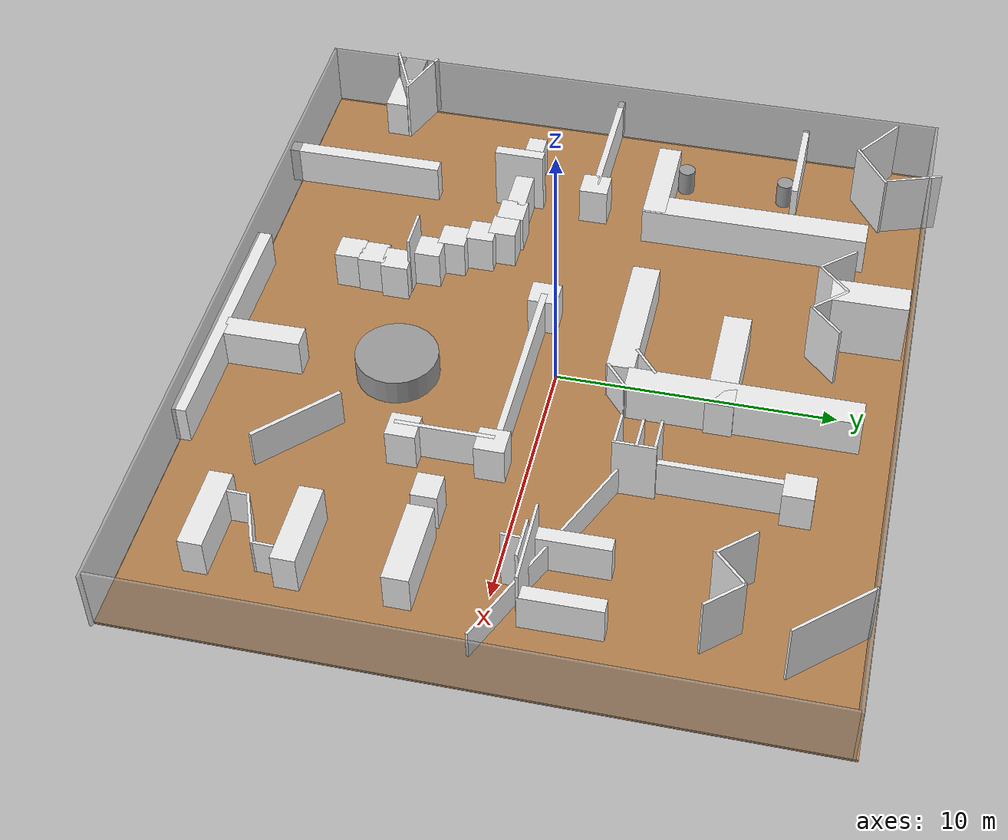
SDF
<sdf version="1.7">
 <world name="default">
  <light name="sun" type="directional">
   <pose>0 0 10 0 -0 0</pose>
   <diffuse>0.8 0.8 0.8 1</diffuse>
   <specular>0.2 0.2 0.2 1</specular>
   <attenuation>
    <range>1000</range>
    <constant>0.9</constant>
    <linear>0.01</linear>
    <quadratic>0.001</quadratic>
   </attenuation>
   <direction>-0.5 0.1 -0.9</direction>
   <spot><inner_angle>0</inner_angle><outer_angle>0</outer_angle><falloff>0</falloff></spot>
  </light>
  <physics name="default_physics" default="0" type="ode">
   <real_time_update_rate>1000</real_time_update_rate>
   <max_step_size>0.001</max_step_size>
   <real_time_factor>1</real_time_factor>
   <ode>
    <solver>
     <type>quick</type>
     <iters>150</iters>
     <precon_iters>0</precon_iters>
     <sor>1.4</sor>
     <use_dynamic_moi_rescaling>1</use_dynamic_moi_rescaling>
    </solver>
    <constraints>
     <cfm>1e-05</cfm>
     <erp>0.2</erp>
     <contact_max_correcting_vel>2000</contact_max_correcting_vel>
     <contact_surface_layer>0.01</contact_surface_layer>
    </constraints>
   </ode>
  </physics>
  <model name="box_1">
   <pose>0.05 -12.05 1.25 0 -0 0</pose>
   <static>1</static>
   <link name="link">
    <collision name="collision"><geometry><box><size>27.4835 0.1 2.5</size></box></geometry></collision>
    <visual name="visual">
     <geometry><box><size>27.4835 0.1 2.5</size></box></geometry>
     <material>
      <script><name>Gazebo/GreyTransparent</name><uri>file://media/materials/scripts/gazebo.material</uri></script>
     </material>
    </visual>
   </link>
  </model>
  <model name="box_2">
   <pose>13.6164 0.05 1.25 0 -0 0</pose>
   <static>1</static>
   <link name="link">
    <collision name="collision"><geometry><box><size>0.1 24.1 2.5</size></box></geometry></collision>
    <visual name="visual">
     <geometry><box><size>0.1 24.1 2.5</size></box></geometry>
     <material>
      <script><name>Gazebo/GreyTransparent</name><uri>file://media/materials/scripts/gazebo.material</uri></script>
     </material>
    </visual>
   </link>
  </model>
  <model name="box_3">
   <pose>-0.05 12.05 1.25 0 -0 0</pose>
   <static>1</static>
   <link name="link">
    <collision name="collision"><geometry><box><size>27.4577 0.1 2.5</size></box></geometry></collision>
    <visual name="visual">
     <geometry><box><size>27.4577 0.1 2.5</size></box></geometry>
     <material>
      <script><name>Gazebo/GreyTransparent</name><uri>file://media/materials/scripts/gazebo.material</uri></script>
     </material>
    </visual>
   </link>
  </model>
  <model name="box_4">
   <pose>-13.7117 -0.05 1.25 0 -0 0</pose>
   <static>1</static>
   <link name="link">
    <collision name="collision"><geometry><box><size>0.1 24.1 2.5</size></box></geometry></collision>
    <visual name="visual">
     <geometry><box><size>0.1 24.1 2.5</size></box></geometry>
     <material>
      <script><name>Gazebo/GreyTransparent</name><uri>file://media/materials/scripts/gazebo.material</uri></script>
     </material>
    </visual>
   </link>
  </model>
  <model name="box_5">
   <pose>-0.057129 0.081047 -0.05 0 -0 0</pose>
   <static>1</static>
   <link name="link">
    <collision name="collision"><geometry><box><size>27.3464 24.2 0.1</size></box></geometry></collision>
    <visual name="visual">
     <geometry><box><size>27.3464 24.2 0.1</size></box></geometry>
     <material>
      <script><name>Gazebo/WoodFloor</name><uri>file://media/materials/scripts/gazebo.material</uri></script>
     </material>
    </visual>
   </link>
  </model>
  <gravity>0 0 -9.8066</gravity>
  <magnetic_field>6e-06 2.3e-05 -4.2e-05</magnetic_field>
  <atmosphere type="adiabatic"/>
  <scene><ambient>0.4 0.4 0.4 1</ambient><background>0.7 0.7 0.7 1</background><shadows>1</shadows></scene>
  <spherical_coordinates>
   <surface_model>EARTH_WGS84</surface_model>
   <latitude_deg>0</latitude_deg>
   <longitude_deg>0</longitude_deg>
   <elevation>0</elevation>
   <heading_deg>0</heading_deg>
  </spherical_coordinates>
  <model name="box_9_clone_clone_0">
   <pose>-3.46298 -8.44795 0.75 0 -0 0</pose>
   <static>1</static>
   <link name="link">
    <collision name="collision"><geometry><box><size>1 1 1.5</size></box></geometry></collision>
    <visual name="visual">
     <geometry><box><size>1 1 1.5</size></box></geometry>
     <material>
      <script><name>Gazebo/White</name><uri>file://media/materials/scripts/gazebo.material</uri></script>
     </material>
    </visual>
   </link>
  </model>
  <model name="box_9_clone_clone_1">
   <pose>-3.40186 -7.56359 0.75 0 -0 0</pose>
   <static>1</static>
   <link name="link">
    <collision name="collision"><geometry><box><size>1 1 1.5</size></box></geometry></collision>
    <visual name="visual">
     <geometry><box><size>1 1 1.5</size></box></geometry>
     <material>
      <script><name>Gazebo/White</name><uri>file://media/materials/scripts/gazebo.material</uri></script>
     </material>
    </visual>
   </link>
  </model>
  <model name="box_9_clone_clone_2">
   <pose>-3.23885 -6.64819 0.75 0 -0 0</pose>
   <static>1</static>
   <link name="link">
    <collision name="collision"><geometry><box><size>1 1 1.5</size></box></geometry></collision>
    <visual name="visual">
     <geometry><box><size>1 1 1.5</size></box></geometry>
     <material>
      <script><name>Gazebo/White</name><uri>file://media/materials/scripts/gazebo.material</uri></script>
     </material>
    </visual>
   </link>
  </model>
  <model name="box_9_clone_clone_9_clone_3">
   <pose>0.923625 6.78613 0.75 0 -0 0</pose>
   <static>1</static>
   <link name="link">
    <collision name="collision"><geometry><box><size>1 8.21069 1.5</size></box></geometry></collision>
    <visual name="visual">
     <geometry><box><size>1 8.21069 1.5</size></box></geometry>
     <material>
      <script><name>Gazebo/White</name><uri>file://media/materials/scripts/gazebo.material</uri></script>
     </material>
    </visual>
   </link>
  </model>
  <model name="box_8_clone_clone_4_clone_1">
   <pose>0.92481 2.34897 0.68407 0 -0 0.698352</pose>
   <static>1</static>
   <link name="link">
    <collision name="collision"><geometry><box><size>1.32603 0.1 1.67648</size></box></geometry></collision>
    <visual name="visual">
     <geometry><box><size>1.32603 0.1 1.67648</size></box></geometry>
     <material>
      <script><name>Gazebo/White</name><uri>file://media/materials/scripts/gazebo.material</uri></script>
     </material>
    </visual>
   </link>
  </model>
  <model name="box_9_clone_clone_7_clone">
   <pose>-2.08707 2.37686 0.75 0 -0 0</pose>
   <static>1</static>
   <link name="link">
    <collision name="collision"><geometry><box><size>5.14646 1 1.5</size></box></geometry></collision>
    <visual name="visual">
     <geometry><box><size>5.14646 1 1.5</size></box></geometry>
     <material>
      <script><name>Gazebo/White</name><uri>file://media/materials/scripts/gazebo.material</uri></script>
     </material>
    </visual>
   </link>
  </model>
  <model name="box_9_clone_clone_7_clone_clone_1">
   <pose>-9.08212 -3.08785 0.75 0 -0 0</pose>
   <static>1</static>
   <link name="link">
    <collision name="collision"><geometry><box><size>3.96159 0.707777 1.5</size></box></geometry></collision>
    <visual name="visual">
     <geometry><box><size>3.96159 0.707777 1.5</size></box></geometry>
     <material>
      <script><name>Gazebo/White</name><uri>file://media/materials/scripts/gazebo.material</uri></script>
     </material>
    </visual>
   </link>
  </model>
  <model name="box_9_clone_clone_7_clone_clone_2">
   <pose>-5.82661 -3.21952 0.75 0 -0 0</pose>
   <static>1</static>
   <link name="link">
    <collision name="collision"><geometry><box><size>1 1 1.5</size></box></geometry></collision>
    <visual name="visual">
     <geometry><box><size>1 1 1.5</size></box></geometry>
     <material>
      <script><name>Gazebo/White</name><uri>file://media/materials/scripts/gazebo.material</uri></script>
     </material>
    </visual>
   </link>
  </model>
  <model name="box_9_clone_clone_7_clone_clone_3">
   <pose>-5.3619 -3.95424 0.75 0 -0 0</pose>
   <static>1</static>
   <link name="link">
    <collision name="collision"><geometry><box><size>1 1 1.5</size></box></geometry></collision>
    <visual name="visual">
     <geometry><box><size>1 1 1.5</size></box></geometry>
     <material>
      <script><name>Gazebo/White</name><uri>file://media/materials/scripts/gazebo.material</uri></script>
     </material>
    </visual>
   </link>
  </model>
  <model name="box_9_clone_clone_7_clone_clone_4">
   <pose>-4.89443 -4.91365 0.75 0 -0 0</pose>
   <static>1</static>
   <link name="link">
    <collision name="collision"><geometry><box><size>1 1 1.5</size></box></geometry></collision>
    <visual name="visual">
     <geometry><box><size>1 1 1.5</size></box></geometry>
     <material>
      <script><name>Gazebo/White</name><uri>file://media/materials/scripts/gazebo.material</uri></script>
     </material>
    </visual>
   </link>
  </model>
  <model name="box_9_clone_clone_7_clone_clone_5">
   <pose>-4.14032 -5.67151 0.75 0 -0 0</pose>
   <static>1</static>
   <link name="link">
    <collision name="collision"><geometry><box><size>1 1 1.5</size></box></geometry></collision>
    <visual name="visual">
     <geometry><box><size>1 1 1.5</size></box></geometry>
     <material>
      <script><name>Gazebo/White</name><uri>file://media/materials/scripts/gazebo.material</uri></script>
     </material>
    </visual>
   </link>
  </model>
  <model name="box_8_clone_clone_4_clone_2_clone">
   <pose>-3.89284 -6.16269 1.25 0 -0 0</pose>
   <static>1</static>
   <link name="link">
    <collision name="collision"><geometry><box><size>1.5 0.1 2.5</size></box></geometry></collision>
    <visual name="visual">
     <geometry><box><size>1.5 0.1 2.5</size></box></geometry>
     <material>
      <script><name>Gazebo/White</name><uri>file://media/materials/scripts/gazebo.material</uri></script>
     </material>
    </visual>
   </link>
  </model>
  <model name="box_6_clone_clone_4_clone">
   <pose>4.19641 4.36405 1.25 0 -0 1.5473</pose>
   <static>1</static>
   <link name="link">
    <collision name="collision"><geometry><box><size>0.1 1.24868 2.5</size></box></geometry></collision>
    <visual name="visual">
     <geometry><box><size>0.1 1.24868 2.5</size></box></geometry>
     <material>
      <script><name>Gazebo/White</name><uri>file://media/materials/scripts/gazebo.material</uri></script>
     </material>
    </visual>
   </link>
  </model>
  <model name="box_9_clone_clone_9_clone_3_clone_0">
   <pose>-0.627026 6.01445 0.75 0 -0 0</pose>
   <static>1</static>
   <link name="link">
    <collision name="collision"><geometry><box><size>4.34985 1 1.5</size></box></geometry></collision>
    <visual name="visual">
     <geometry><box><size>4.34985 1 1.5</size></box></geometry>
     <material>
      <script><name>Gazebo/White</name><uri>file://media/materials/scripts/gazebo.material</uri></script>
     </material>
    </visual>
   </link>
  </model>
  <audio><device>default</device></audio>
  <model name="box_9_clone_clone_5_clone_2_clone_0_clone_2">
   <pose>4.51157 6.4869 0.75 0 -0 0</pose>
   <static>1</static>
   <link name="link">
    <collision name="collision"><geometry><box><size>0.217022 4.27843 1.5</size></box></geometry></collision>
    <visual name="visual">
     <geometry><box><size>0.217022 4.27843 1.5</size></box></geometry>
     <material>
      <script><name>Gazebo/White</name><uri>file://media/materials/scripts/gazebo.material</uri></script>
     </material>
    </visual>
   </link>
  </model>
  <model name="box_6_clone_clone_4_clone_clone">
   <pose>4.24691 3.74326 1.25 0 -0 1.5473</pose>
   <static>1</static>
   <link name="link">
    <collision name="collision"><geometry><box><size>0.1 1.20271 2.5</size></box></geometry></collision>
    <visual name="visual">
     <geometry><box><size>0.1 1.20271 2.5</size></box></geometry>
     <material>
      <script><name>Gazebo/White</name><uri>file://media/materials/scripts/gazebo.material</uri></script>
     </material>
    </visual>
   </link>
  </model>
  <model name="box_6_clone_clone_4_clone_clone_0">
   <pose>4.18218 3.00755 1.25 0 -0 1.5473</pose>
   <static>1</static>
   <link name="link">
    <collision name="collision"><geometry><box><size>0.1 1.22541 2.5</size></box></geometry></collision>
    <visual name="visual">
     <geometry><box><size>0.1 1.22541 2.5</size></box></geometry>
     <material>
      <script><name>Gazebo/White</name><uri>file://media/materials/scripts/gazebo.material</uri></script>
     </material>
    </visual>
   </link>
  </model>
  <model name="box_8_clone_clone_4_clone_1_clone">
   <pose>0.020285 3.21878 0.598648 0 -0 0.698352</pose>
   <static>1</static>
   <link name="link">
    <collision name="collision"><geometry><box><size>1.32602 0.1 1.81655</size></box></geometry></collision>
    <visual name="visual">
     <geometry><box><size>1.32602 0.1 1.81655</size></box></geometry>
     <material>
      <script><name>Gazebo/White</name><uri>file://media/materials/scripts/gazebo.material</uri></script>
     </material>
    </visual>
   </link>
  </model>
  <model name="box_9_clone_clone_5_clone_2_clone_0_clone_2_clone">
   <pose>-8.20929 5.84781 0.75 0 -0 0</pose>
   <static>1</static>
   <link name="link">
    <collision name="collision"><geometry><box><size>0.999715 8.40331 1.5</size></box></geometry></collision>
    <visual name="visual">
     <geometry><box><size>0.999715 8.40331 1.5</size></box></geometry>
     <material>
      <script><name>Gazebo/White</name><uri>file://media/materials/scripts/gazebo.material</uri></script>
     </material>
    </visual>
   </link>
  </model>
  <model name="box_9_clone_clone_5_clone_2_clone_0_clone_2_clone_0_clone">
   <pose>1.29918 -0.998345 0.75 0 -0 1.56359</pose>
   <static>1</static>
   <link name="link">
    <collision name="collision"><geometry><box><size>0.238975 7.6866 1.5</size></box></geometry></collision>
    <visual name="visual">
     <geometry><box><size>0.238975 7.6866 1.5</size></box></geometry>
     <material>
      <script><name>Gazebo/White</name><uri>file://media/materials/scripts/gazebo.material</uri></script>
     </material>
    </visual>
   </link>
  </model>
  <model name="box_9_clone_clone_7_clone_clone">
   <pose>-11.9133 7.09734 0.75 0 -0 0</pose>
   <static>1</static>
   <link name="link">
    <collision name="collision"><geometry><box><size>3.69623 0.244601 1.5</size></box></geometry></collision>
    <visual name="visual">
     <geometry><box><size>3.69623 0.244601 1.5</size></box></geometry>
     <material>
      <script><name>Gazebo/White</name><uri>file://media/materials/scripts/gazebo.material</uri></script>
     </material>
    </visual>
   </link>
  </model>
  <model name="box_6_clone_clone_clone_0_clone_0">
   <pose>-5.51729 9.19762 1.25 0 0 -2.41059</pose>
   <static>1</static>
   <link name="link">
    <collision name="collision"><geometry><box><size>0.1 1.60265 2.5</size></box></geometry></collision>
    <visual name="visual">
     <geometry><box><size>0.1 1.60265 2.5</size></box></geometry>
     <material>
      <script><name>Gazebo/White</name><uri>file://media/materials/scripts/gazebo.material</uri></script>
     </material>
    </visual>
   </link>
  </model>
  <model name="box_6_clone_clone_clone_0_clone_0_clone">
   <pose>-4.45373 9.15321 1.25 0 -0 2.3647</pose>
   <static>1</static>
   <link name="link">
    <collision name="collision"><geometry><box><size>0.1 1.60265 2.5</size></box></geometry></collision>
    <visual name="visual">
     <geometry><box><size>0.1 1.60265 2.5</size></box></geometry>
     <material>
      <script><name>Gazebo/White</name><uri>file://media/materials/scripts/gazebo.material</uri></script>
     </material>
    </visual>
   </link>
  </model>
  <model name="box_6_clone_clone_clone_0_clone_0_clone_0">
   <pose>-3.36619 9.12539 1.25 0 0 -2.41059</pose>
   <static>1</static>
   <link name="link">
    <collision name="collision"><geometry><box><size>0.1 1.60265 2.5</size></box></geometry></collision>
    <visual name="visual">
     <geometry><box><size>0.1 1.60265 2.5</size></box></geometry>
     <material>
      <script><name>Gazebo/White</name><uri>file://media/materials/scripts/gazebo.material</uri></script>
     </material>
    </visual>
   </link>
  </model>
  <model name="box_6_clone_clone_clone_0_clone_0_clone_clone">
   <pose>-2.34285 9.09006 1.25 0 -0 2.3647</pose>
   <static>1</static>
   <link name="link">
    <collision name="collision"><geometry><box><size>0.1 1.60265 2.5</size></box></geometry></collision>
    <visual name="visual">
     <geometry><box><size>0.1 1.60265 2.5</size></box></geometry>
     <material>
      <script><name>Gazebo/White</name><uri>file://media/materials/scripts/gazebo.material</uri></script>
     </material>
    </visual>
   </link>
  </model>
  <model name="box_6_clone_clone_clone_0_clone_0_clone_1">
   <pose>-3.90632 10.5012 1.25 0 0 -3.13387</pose>
   <static>1</static>
   <link name="link">
    <collision name="collision"><geometry><box><size>1.07348 2.77689 2.5</size></box></geometry></collision>
    <visual name="visual">
     <geometry><box><size>1.07348 2.77689 2.5</size></box></geometry>
     <material>
      <script><name>Gazebo/White</name><uri>file://media/materials/scripts/gazebo.material</uri></script>
     </material>
    </visual>
   </link>
  </model>
  <model name="unit_cylinder">
   <pose>0.985445 -5.52503 0.500015 -7e-06 7e-06 -0.000742</pose>
   <link name="link">
    <inertial>
     <mass>1</mass>
     <inertia><ixx>0.145833</ixx><ixy>0</ixy><ixz>0</ixz><iyy>0.145833</iyy><iyz>0</iyz><izz>0.125</izz></inertia>
    </inertial>
    <collision name="collision">
     <geometry><cylinder><radius>1.49142</radius><length>1</length></cylinder></geometry>
    </collision>
    <visual name="visual">
     <geometry><cylinder><radius>1.49142</radius><length>1</length></cylinder></geometry>
     <material>
      <script><name>Gazebo/Grey</name><uri>file://media/materials/scripts/gazebo.material</uri></script>
     </material>
    </visual>
   </link>
  </model>
  <model name="box_6_clone_clone_4_clone_clone_1">
   <pose>4.8146 3.66742 1.25 0 0 -0.001309</pose>
   <static>1</static>
   <link name="link">
    <collision name="collision"><geometry><box><size>0.1 1.5 2.5</size></box></geometry></collision>
    <visual name="visual">
     <geometry><box><size>0.1 1.5 2.5</size></box></geometry>
     <material>
      <script><name>Gazebo/White</name><uri>file://media/materials/scripts/gazebo.material</uri></script>
     </material>
    </visual>
   </link>
  </model>
  <model name="box_9_clone_clone_5_clone_2_clone_0_clone_2_clone_0_clone_clone_clone">
   <pose>9.54444 -6.45224 0.75 0 -0 1.56352</pose>
   <static>1</static>
   <link name="link">
    <collision name="collision"><geometry><box><size>0.843798 3.07714 1.5</size></box></geometry></collision>
    <visual name="visual">
     <geometry><box><size>0.843798 3.07714 1.5</size></box></geometry>
     <material>
      <script><name>Gazebo/White</name><uri>file://media/materials/scripts/gazebo.material</uri></script>
     </material>
    </visual>
   </link>
  </model>
  <model name="box_9_clone_clone_5_clone_2_clone_0_clone_2_clone_0_clone_clone_clone_clone">
   <pose>9.54266 -2.76485 0.75 0 -0 1.56352</pose>
   <static>1</static>
   <link name="link">
    <collision name="collision"><geometry><box><size>0.91874 3.07802 1.5</size></box></geometry></collision>
    <visual name="visual">
     <geometry><box><size>0.91874 3.07802 1.5</size></box></geometry>
     <material>
      <script><name>Gazebo/White</name><uri>file://media/materials/scripts/gazebo.material</uri></script>
     </material>
    </visual>
   </link>
  </model>
  <model name="box_6_clone_clone_1_clone">
   <pose>9.63242 -8.01755 0.74041 0 0 -1.19602</pose>
   <static>1</static>
   <link name="link">
    <collision name="collision"><geometry><box><size>0.1 2.10156 1.49114</size></box></geometry></collision>
    <visual name="visual">
     <geometry><box><size>0.1 2.10156 1.49114</size></box></geometry>
     <material>
      <script><name>Gazebo/White</name><uri>file://media/materials/scripts/gazebo.material</uri></script>
     </material>
    </visual>
   </link>
  </model>
  <model name="box_6_clone_clone_4_clone_clone_clone">
   <pose>9.37461 0.934459 1.25 0 -0 1.56028</pose>
   <static>1</static>
   <link name="link">
    <collision name="collision"><geometry><box><size>0.1 1.5 2.5</size></box></geometry></collision>
    <visual name="visual">
     <geometry><box><size>0.1 1.5 2.5</size></box></geometry>
     <material>
      <script><name>Gazebo/White</name><uri>file://media/materials/scripts/gazebo.material</uri></script>
     </material>
    </visual>
   </link>
  </model>
  <model name="box_6_clone_clone_4_clone_clone_clone_0">
   <pose>9.4532 1.11788 1.25 0 -0 1.57422</pose>
   <static>1</static>
   <link name="link">
    <collision name="collision"><geometry><box><size>0.1 3.02222 2.5</size></box></geometry></collision>
    <visual name="visual">
     <geometry><box><size>0.1 3.02222 2.5</size></box></geometry>
     <material>
      <script><name>Gazebo/White</name><uri>file://media/materials/scripts/gazebo.material</uri></script>
     </material>
    </visual>
   </link>
  </model>
  <model name="box_6_clone_clone_4_clone_clone_clone_clone">
   <pose>9.36555 0.57412 1.25 0 -0 3.12409</pose>
   <static>1</static>
   <link name="link">
    <collision name="collision"><geometry><box><size>0.1 0.695313 2.5</size></box></geometry></collision>
    <visual name="visual">
     <geometry><box><size>0.1 0.695313 2.5</size></box></geometry>
     <material>
      <script><name>Gazebo/White</name><uri>file://media/materials/scripts/gazebo.material</uri></script>
     </material>
    </visual>
   </link>
  </model>
  <model name="box_9_clone_clone_5_clone_2_clone_0_clone_2_clone_0_clone_clone_clone_clone_1">
   <pose>8.29292 2.40961 0.75 0 0 -3.13353</pose>
   <static>1</static>
   <link name="link">
    <collision name="collision"><geometry><box><size>0.517731 2.54125 1.5</size></box></geometry></collision>
    <visual name="visual">
     <geometry><box><size>0.517731 2.54125 1.5</size></box></geometry>
     <material>
      <script><name>Gazebo/White</name><uri>file://media/materials/scripts/gazebo.material</uri></script>
     </material>
    </visual>
   </link>
  </model>
  <model name="box_9_clone_clone_5_clone_2_clone_0_clone_2_clone_0_clone_clone_clone_clone_1_clone">
   <pose>10.7143 2.50136 0.75 0 0 -3.13353</pose>
   <static>1</static>
   <link name="link">
    <collision name="collision"><geometry><box><size>0.517731 2.83434 1.5</size></box></geometry></collision>
    <visual name="visual">
     <geometry><box><size>0.517731 2.83434 1.5</size></box></geometry>
     <material>
      <script><name>Gazebo/White</name><uri>file://media/materials/scripts/gazebo.material</uri></script>
     </material>
    </visual>
   </link>
  </model>
  <model name="box_6_clone_clone_clone_0_clone_0_clone_clone_clone">
   <pose>9.16663 7.48045 1.25 0 -0 2.3647</pose>
   <static>1</static>
   <link name="link">
    <collision name="collision"><geometry><box><size>0.1 1.60265 2.5</size></box></geometry></collision>
    <visual name="visual">
     <geometry><box><size>0.1 1.60265 2.5</size></box></geometry>
     <material>
      <script><name>Gazebo/White</name><uri>file://media/materials/scripts/gazebo.material</uri></script>
     </material>
    </visual>
   </link>
  </model>
  <model name="box_6_clone_clone_clone_0_clone_0_clone_2">
   <pose>8.12867 7.55946 1.25 0 0 -2.41059</pose>
   <static>1</static>
   <link name="link">
    <collision name="collision"><geometry><box><size>0.1 1.60265 2.5</size></box></geometry></collision>
    <visual name="visual">
     <geometry><box><size>0.1 1.60265 2.5</size></box></geometry>
     <material>
      <script><name>Gazebo/White</name><uri>file://media/materials/scripts/gazebo.material</uri></script>
     </material>
    </visual>
   </link>
  </model>
  <model name="box_6_clone_clone_clone_0_clone_0_clone_0_clone">
   <pose>10.2349 7.47203 1.25 0 0 -2.41059</pose>
   <static>1</static>
   <link name="link">
    <collision name="collision"><geometry><box><size>0.1 1.60265 2.5</size></box></geometry></collision>
    <visual name="visual">
     <geometry><box><size>0.1 1.60265 2.5</size></box></geometry>
     <material>
      <script><name>Gazebo/White</name><uri>file://media/materials/scripts/gazebo.material</uri></script>
     </material>
    </visual>
   </link>
  </model>
  <model name="box_6_clone_clone_1_clone_0">
   <pose>8.61855 1.50825 0.618044 0 -0 1.16323</pose>
   <static>1</static>
   <link name="link">
    <collision name="collision"><geometry><box><size>0.1 8.30654 1.15985</size></box></geometry></collision>
    <visual name="visual">
     <geometry><box><size>0.1 8.30654 1.15985</size></box></geometry>
     <material>
      <script><name>Gazebo/White</name><uri>file://media/materials/scripts/gazebo.material</uri></script>
     </material>
    </visual>
   </link>
  </model>
  <model name="box_9_clone_clone_7_clone_clone_clone_0">
   <pose>-9.65191 2.07884 0.75 0 -0 0</pose>
   <static>1</static>
   <link name="link">
    <collision name="collision"><geometry><box><size>3.72975 0.853628 1.5</size></box></geometry></collision>
    <visual name="visual">
     <geometry><box><size>3.72975 0.853628 1.5</size></box></geometry>
     <material>
      <script><name>Gazebo/White</name><uri>file://media/materials/scripts/gazebo.material</uri></script>
     </material>
    </visual>
   </link>
  </model>
  <model name="box_9_clone_clone_5_clone_2_clone_0_clone_2_clone_clone">
   <pose>-8.6325 -9.41484 0.75 0 -0 0</pose>
   <static>1</static>
   <link name="link">
    <collision name="collision"><geometry><box><size>0.517731 5.90244 1.5</size></box></geometry></collision>
    <visual name="visual">
     <geometry><box><size>0.517731 5.90244 1.5</size></box></geometry>
     <material>
      <script><name>Gazebo/White</name><uri>file://media/materials/scripts/gazebo.material</uri></script>
     </material>
    </visual>
   </link>
  </model>
  <model name="box_6_clone_clone_clone_0_clone_0_clone_2_clone">
   <pose>-12.9412 -8.2324 1.25 0 0 -1.91939</pose>
   <static>1</static>
   <link name="link">
    <collision name="collision"><geometry><box><size>0.1 2.13425 2.5</size></box></geometry></collision>
    <visual name="visual">
     <geometry><box><size>0.1 2.13425 2.5</size></box></geometry>
     <material>
      <script><name>Gazebo/White</name><uri>file://media/materials/scripts/gazebo.material</uri></script>
     </material>
    </visual>
   </link>
  </model>
  <model name="box_6_clone_clone_clone_0_clone_0_clone_2_clone_clone">
   <pose>-13.0267 -9.02916 1.25 0 0 -1.13074</pose>
   <static>1</static>
   <link name="link">
    <collision name="collision"><geometry><box><size>0.1 2.13426 2.5</size></box></geometry></collision>
    <visual name="visual">
     <geometry><box><size>0.1 2.13426 2.5</size></box></geometry>
     <material>
      <script><name>Gazebo/White</name><uri>file://media/materials/scripts/gazebo.material</uri></script>
     </material>
    </visual>
   </link>
  </model>
  <model name="box_9_clone_clone_5_clone_2_clone_0_clone_2_clone_0_clone_clone">
   <pose>1.05576 -11.8471 0.75 0 -0 1.56352</pose>
   <static>1</static>
   <link name="link">
    <collision name="collision"><geometry><box><size>0.517731 9.1748 1.5</size></box></geometry></collision>
    <visual name="visual">
     <geometry><box><size>0.517731 9.1748 1.5</size></box></geometry>
     <material>
      <script><name>Gazebo/White</name><uri>file://media/materials/scripts/gazebo.material</uri></script>
     </material>
    </visual>
   </link>
  </model>
  <model name="box_9_clone_clone_5_clone_2_clone_0_clone_2_clone_0_clone_clone_clone_clone_1_clone_clone">
   <pose>1.38751 -10.2593 0.75 0 0 -3.13353</pose>
   <static>1</static>
   <link name="link">
    <collision name="collision"><geometry><box><size>0.825522 2.83434 1.5</size></box></geometry></collision>
    <visual name="visual">
     <geometry><box><size>0.825522 2.83434 1.5</size></box></geometry>
     <material>
      <script><name>Gazebo/White</name><uri>file://media/materials/scripts/gazebo.material</uri></script>
     </material>
    </visual>
   </link>
  </model>
  <model name="box_9_clone_clone_5_clone_clone">
   <pose>4.5992 9.15741 0.75 0 -0 0</pose>
   <static>1</static>
   <link name="link">
    <collision name="collision"><geometry><box><size>1 1.06509 1.5</size></box></geometry></collision>
    <visual name="visual">
     <geometry><box><size>1 1.06509 1.5</size></box></geometry>
     <material>
      <script><name>Gazebo/White</name><uri>file://media/materials/scripts/gazebo.material</uri></script>
     </material>
    </visual>
   </link>
  </model>
  <model name="box_6_clone_clone_clone_0_clone_0_clone_2_clone_0">
   <pose>10.0891 10.8411 1.25 0 0 -2.41059</pose>
   <static>1</static>
   <link name="link">
    <collision name="collision"><geometry><box><size>0.1 3.24242 2.5</size></box></geometry></collision>
    <visual name="visual">
     <geometry><box><size>0.1 3.24242 2.5</size></box></geometry>
     <material>
      <script><name>Gazebo/White</name><uri>file://media/materials/scripts/gazebo.material</uri></script>
     </material>
    </visual>
   </link>
  </model>
  <model name="box_9_clone_clone_5_clone_2_clone_0_clone_2_clone_0_clone_clone_clone_clone_0">
   <pose>9.53139 -9.54857 0.75 0 -0 1.56352</pose>
   <static>1</static>
   <link name="link">
    <collision name="collision"><geometry><box><size>0.843798 3.07714 1.5</size></box></geometry></collision>
    <visual name="visual">
     <geometry><box><size>0.843798 3.07714 1.5</size></box></geometry>
     <material>
      <script><name>Gazebo/White</name><uri>file://media/materials/scripts/gazebo.material</uri></script>
     </material>
    </visual>
   </link>
  </model>
  <model name="box_9_clone_clone_5_clone_2_clone_0_clone_2_clone_0_clone_clone_0_clone">
   <pose>4.9281 -7.96233 0.75 0 0 -2.33603</pose>
   <static>1</static>
   <link name="link">
    <collision name="collision"><geometry><box><size>0.149813 3.48664 1.5</size></box></geometry></collision>
    <visual name="visual">
     <geometry><box><size>0.149813 3.48664 1.5</size></box></geometry>
     <material>
      <script><name>Gazebo/White</name><uri>file://media/materials/scripts/gazebo.material</uri></script>
     </material>
    </visual>
   </link>
  </model>
  <model name="box_9_clone_clone_5_clone_2_clone_0_clone_2_clone_0_clone_clone_0_clone_clone">
   <pose>4.59014 -2.84305 0.75 0 -0 3.14009</pose>
   <static>1</static>
   <link name="link">
    <collision name="collision"><geometry><box><size>0.149813 3.48664 1.5</size></box></geometry></collision>
    <visual name="visual">
     <geometry><box><size>0.149813 3.48664 1.5</size></box></geometry>
     <material>
      <script><name>Gazebo/White</name><uri>file://media/materials/scripts/gazebo.material</uri></script>
     </material>
    </visual>
   </link>
  </model>
  <model name="box_9_clone_clone_5_clone_clone_clone">
   <pose>-2.59272 -0.967922 0.75 0 -0 0</pose>
   <static>1</static>
   <link name="link">
    <collision name="collision"><geometry><box><size>1 1.06509 1.5</size></box></geometry></collision>
    <visual name="visual">
     <geometry><box><size>1 1.06509 1.5</size></box></geometry>
     <material>
      <script><name>Gazebo/White</name><uri>file://media/materials/scripts/gazebo.material</uri></script>
     </material>
    </visual>
   </link>
  </model>
  <model name="box_9_clone_clone_5_clone_clone_clone_0">
   <pose>4.7058 -4.24546 0.75 0 -0 0</pose>
   <static>1</static>
   <link name="link">
    <collision name="collision"><geometry><box><size>1 1.06509 1.5</size></box></geometry></collision>
    <visual name="visual">
     <geometry><box><size>1 1.06509 1.5</size></box></geometry>
     <material>
      <script><name>Gazebo/White</name><uri>file://media/materials/scripts/gazebo.material</uri></script>
     </material>
    </visual>
   </link>
  </model>
  <model name="box_9_clone_clone_5_clone_clone_clone_2">
   <pose>7.1184 -2.76878 0.75 0 -0 0</pose>
   <static>1</static>
   <link name="link">
    <collision name="collision"><geometry><box><size>1 0.921639 1.5</size></box></geometry></collision>
    <visual name="visual">
     <geometry><box><size>1 0.921639 1.5</size></box></geometry>
     <material>
      <script><name>Gazebo/White</name><uri>file://media/materials/scripts/gazebo.material</uri></script>
     </material>
    </visual>
   </link>
  </model>
  <model name="box_9_clone_clone_5_clone_2_clone_0_clone_2_clone_0_clone_clone_0">
   <pose>-11.4677 -0.34019 0.75 0 -0 1.56359</pose>
   <static>1</static>
   <link name="link">
    <collision name="collision"><geometry><box><size>0.238975 5.14966 1.5</size></box></geometry></collision>
    <visual name="visual">
     <geometry><box><size>0.238975 5.14966 1.5</size></box></geometry>
     <material>
      <script><name>Gazebo/White</name><uri>file://media/materials/scripts/gazebo.material</uri></script>
     </material>
    </visual>
   </link>
  </model>
  <model name="box_9_clone_clone_5_clone_clone_clone_clone">
   <pose>-8.86383 -0.367386 0.75 0 -0 0</pose>
   <static>1</static>
   <link name="link">
    <collision name="collision"><geometry><box><size>1 1.06509 1.5</size></box></geometry></collision>
    <visual name="visual">
     <geometry><box><size>1 1.06509 1.5</size></box></geometry>
     <material>
      <script><name>Gazebo/White</name><uri>file://media/materials/scripts/gazebo.material</uri></script>
     </material>
    </visual>
   </link>
  </model>
  <model name="box_6_clone_clone_4_clone_clone_clone_clone_clone_0">
   <pose>10.5612 -7.26456 0.728231 0 -0 3.12409</pose>
   <static>1</static>
   <link name="link">
    <collision name="collision"><geometry><box><size>0.1 0.695313 1.468</size></box></geometry></collision>
    <visual name="visual">
     <geometry><box><size>0.1 0.695313 1.468</size></box></geometry>
     <material>
      <script><name>Gazebo/White</name><uri>file://media/materials/scripts/gazebo.material</uri></script>
     </material>
    </visual>
   </link>
  </model>
  <model name="unit_cylinder_clone">
   <pose>-11.0316 2.83 0.5 0 -0 -0.000921</pose>
   <link name="link">
    <inertial>
     <mass>1</mass>
     <inertia><ixx>0.145833</ixx><ixy>0</ixy><ixz>0</ixz><iyy>0.145833</iyy><iyz>0</iyz><izz>0.125</izz></inertia>
    </inertial>
    <collision name="collision">
     <geometry><cylinder><radius>0.312196</radius><length>1</length></cylinder></geometry>
    </collision>
    <visual name="visual">
     <geometry><cylinder><radius>0.312196</radius><length>1</length></cylinder></geometry>
     <material>
      <script><name>Gazebo/Grey</name><uri>file://media/materials/scripts/gazebo.material</uri></script>
     </material>
    </visual>
   </link>
  </model>
  <model name="unit_cylinder_clone_clone">
   <pose>-11.0656 6.66282 0.500002 -1e-06 -5e-06 -0.001191</pose>
   <link name="link">
    <inertial>
     <mass>1</mass>
     <inertia><ixx>0.145833</ixx><ixy>0</ixy><ixz>0</ixz><iyy>0.145833</iyy><iyz>0</iyz><izz>0.125</izz></inertia>
    </inertial>
    <collision name="collision">
     <geometry><cylinder><radius>0.312196</radius><length>1</length></cylinder></geometry>
    </collision>
    <visual name="visual">
     <geometry><cylinder><radius>0.312196</radius><length>1</length></cylinder></geometry>
     <material>
      <script><name>Gazebo/Grey</name><uri>file://media/materials/scripts/gazebo.material</uri></script>
     </material>
    </visual>
   </link>
  </model>
  <model name="box_6_clone_clone_4_clone_clone_clone_clone_clone_0_clone">
   <pose>8.67421 -8.77015 0.728231 0 -0 3.12409</pose>
   <static>1</static>
   <link name="link">
    <collision name="collision"><geometry><box><size>0.1 0.772875 1.468</size></box></geometry></collision>
    <visual name="visual">
     <geometry><box><size>0.1 0.772875 1.468</size></box></geometry>
     <material>
      <script><name>Gazebo/White</name><uri>file://media/materials/scripts/gazebo.material</uri></script>
     </material>
    </visual>
   </link>
  </model>
  <model name="box_9_clone_clone_5_clone_clone_clone_1_clone">
   <pose>4.72909 -1.1665 0.75 0 -0 0</pose>
   <static>1</static>
   <link name="link">
    <collision name="collision"><geometry><box><size>1 1.06509 1.5</size></box></geometry></collision>
    <visual name="visual">
     <geometry><box><size>1 1.06509 1.5</size></box></geometry>
     <material>
      <script><name>Gazebo/White</name><uri>file://media/materials/scripts/gazebo.material</uri></script>
     </material>
    </visual>
   </link>
  </model>
  <model name="box_6_clone_clone_clone_0_clone_0_clone_2_clone_clone_0">
   <pose>-12.6684 9.96416 1.25 0.004899 -0 -2.17636</pose>
   <static>1</static>
   <link name="link">
    <collision name="collision"><geometry><box><size>0.1 2.13425 2.5</size></box></geometry></collision>
    <visual name="visual">
     <geometry><box><size>0.1 2.13425 2.5</size></box></geometry>
     <material>
      <script><name>Gazebo/White</name><uri>file://media/materials/scripts/gazebo.material</uri></script>
     </material>
    </visual>
   </link>
  </model>
  <model name="box_6_clone_clone_clone_0_clone_0_clone_2_clone_clone_clone">
   <pose>-10.5404 11.4399 1.25 0 -0 0.330253</pose>
   <static>1</static>
   <link name="link">
    <collision name="collision"><geometry><box><size>0.1 2.13426 2.5</size></box></geometry></collision>
    <visual name="visual">
     <geometry><box><size>0.1 2.13426 2.5</size></box></geometry>
     <material>
      <script><name>Gazebo/White</name><uri>file://media/materials/scripts/gazebo.material</uri></script>
     </material>
    </visual>
   </link>
  </model>
  <model name="box_6_clone_clone_clone_0_clone_0_clone_2_clone_clone_0_clone">
   <pose>-10.9454 9.83136 1.25 0.001692 -0.004598 -0.95822</pose>
   <static>1</static>
   <link name="link">
    <collision name="collision"><geometry><box><size>0.1 2.13425 2.5</size></box></geometry></collision>
    <visual name="visual">
     <geometry><box><size>0.1 2.13425 2.5</size></box></geometry>
     <material>
      <script><name>Gazebo/White</name><uri>file://media/materials/scripts/gazebo.material</uri></script>
     </material>
    </visual>
   </link>
  </model>
  <model name="box_6_clone_clone_4_clone_clone_1_clone">
   <pose>-8.92093 -3.32073 1.25 0 0 -0.001309</pose>
   <static>1</static>
   <link name="link">
    <collision name="collision"><geometry><box><size>0.407547 1.85352 2.5</size></box></geometry></collision>
    <visual name="visual">
     <geometry><box><size>0.407547 1.85352 2.5</size></box></geometry>
     <material>
      <script><name>Gazebo/White</name><uri>file://media/materials/scripts/gazebo.material</uri></script>
     </material>
    </visual>
   </link>
  </model>
  <model name="box_9_clone_clone_5_clone_2_clone_0_clone_2_clone_0_clone_clone_clone_clone_0_clone">
   <pose>-13.5014 -9.06923 0.75 0 -0 1.56352</pose>
   <static>1</static>
   <link name="link">
    <collision name="collision"><geometry><box><size>0.843798 3.07714 1.5</size></box></geometry></collision>
    <visual name="visual">
     <geometry><box><size>0.843798 3.07714 1.5</size></box></geometry>
     <material>
      <script><name>Gazebo/White</name><uri>file://media/materials/scripts/gazebo.material</uri></script>
     </material>
    </visual>
   </link>
  </model>
  <model name="box_9_clone_clone_7_clone_clone_2_clone">
   <pose>-6.7523 -3.12345 0.75 0 -0 0</pose>
   <static>1</static>
   <link name="link">
    <collision name="collision"><geometry><box><size>1 1 1.5</size></box></geometry></collision>
    <visual name="visual">
     <geometry><box><size>1 1 1.5</size></box></geometry>
     <material>
      <script><name>Gazebo/White</name><uri>file://media/materials/scripts/gazebo.material</uri></script>
     </material>
    </visual>
   </link>
  </model>
 </world>
</sdf>
